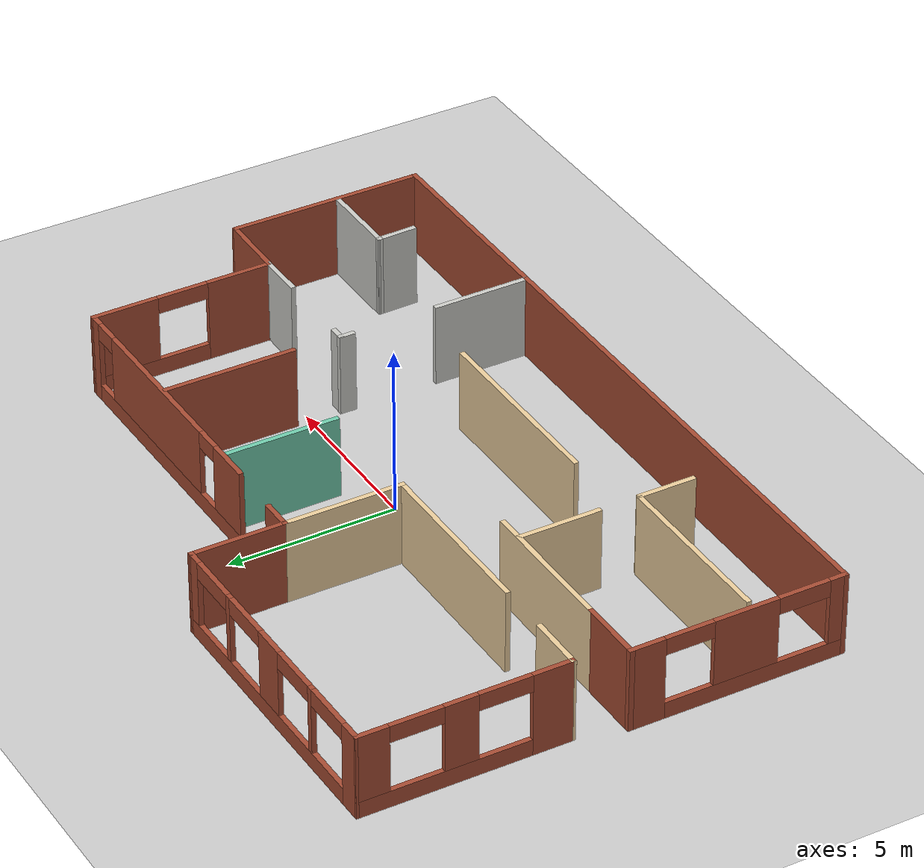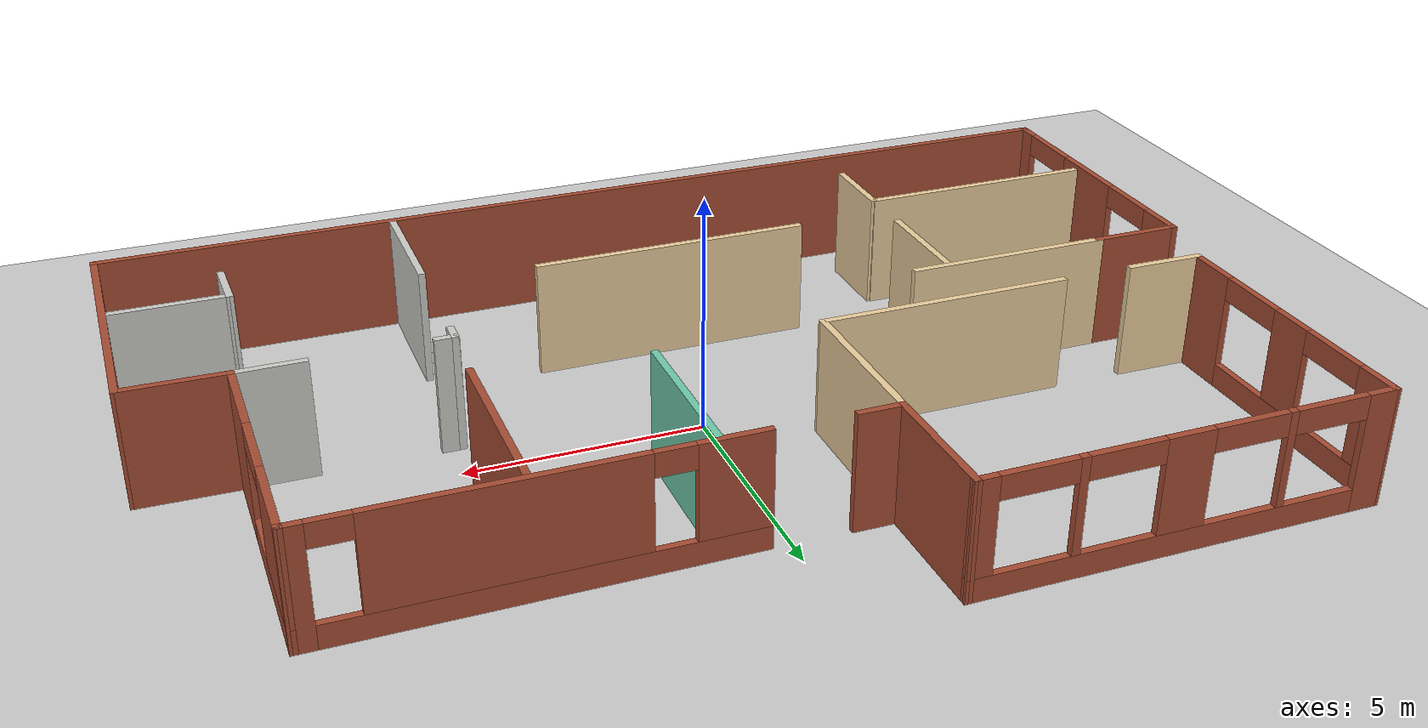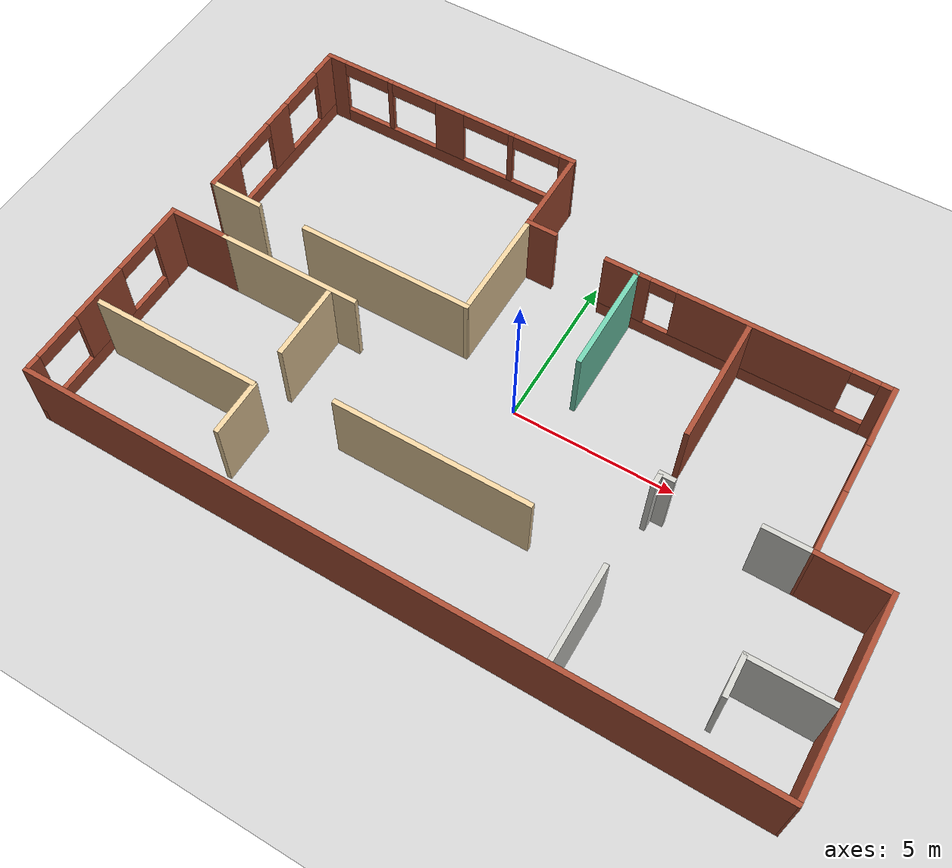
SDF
<sdf version="1.6">
 <world name="default">
  <model name="ground_plane">
   <static>1</static>
   <link name="link">
    <collision name="collision">
     <geometry><plane><normal>0 0 1</normal><size>100 100</size></plane></geometry>
     <surface><friction><ode><mu>100</mu><mu2>50</mu2></ode></friction></surface>
    </collision>
    <visual name="visual">
     <cast_shadows>0</cast_shadows>
     <geometry><plane><normal>0 0 1</normal><size>100 100</size></plane></geometry>
     <material>
      <script><uri>file://media/materials/scripts/gazebo.material</uri><name>Gazebo/Grey</name></script>
     </material>
    </visual>
   </link>
  </model>
  <model name="Building">
   <pose>-0.04157 0.13708 0 0 -0 0</pose>
   <link name="Wall_0">
    <pose>-6.38643 6.94192 0 0 -0 0.004651</pose>
    <visual name="Wall_0_Visual_0">
     <pose>-4.03681 0 1.25 0 -0 0</pose>
     <geometry><box><size>0.676483 0.15 2.5</size></box></geometry>
     <material>
      <script><uri>file://media/materials/scripts/gazebo.material</uri><name>Gazebo/Bricks</name></script>
      <ambient>1 1 1 1</ambient>
     </material>
     <meta><layer>0</layer></meta>
    </visual>
    <collision name="Wall_0_Collision_0">
     <geometry><box><size>0.676483 0.15 2.5</size></box></geometry>
     <pose>-4.03681 0 1.25 0 -0 0</pose>
    </collision>
    <visual name="Wall_0_Visual_1">
     <pose>0.338242 0 0.25 0 -0 0</pose>
     <geometry><box><size>8.07361 0.15 0.5</size></box></geometry>
     <material>
      <script><uri>file://media/materials/scripts/gazebo.material</uri><name>Gazebo/Bricks</name></script>
      <ambient>1 1 1 1</ambient>
     </material>
     <meta><layer>0</layer></meta>
    </visual>
    <collision name="Wall_0_Collision_1">
     <geometry><box><size>8.07361 0.15 0.5</size></box></geometry>
     <pose>0.338242 0 0.25 0 -0 0</pose>
    </collision>
    <visual name="Wall_0_Visual_2">
     <pose>-2.05817 0 1.5 0 -0 0</pose>
     <geometry><box><size>0.164796 0.15 2</size></box></geometry>
     <material>
      <script><uri>file://media/materials/scripts/gazebo.material</uri><name>Gazebo/Bricks</name></script>
      <ambient>1 1 1 1</ambient>
     </material>
     <meta><layer>0</layer></meta>
    </visual>
    <collision name="Wall_0_Collision_2">
     <geometry><box><size>0.164796 0.15 2</size></box></geometry>
     <pose>-2.05817 0 1.5 0 -0 0</pose>
    </collision>
    <visual name="Wall_0_Visual_3">
     <pose>0.078861 0 1.5 0 -0 0</pose>
     <geometry><box><size>0.993258 0.15 2</size></box></geometry>
     <material>
      <script><uri>file://media/materials/scripts/gazebo.material</uri><name>Gazebo/Bricks</name></script>
      <ambient>1 1 1 1</ambient>
     </material>
     <meta><layer>0</layer></meta>
    </visual>
    <collision name="Wall_0_Collision_3">
     <geometry><box><size>0.993258 0.15 2</size></box></geometry>
     <pose>0.078861 0 1.5 0 -0 0</pose>
    </collision>
    <visual name="Wall_0_Visual_4">
     <pose>2.22237 0 1.5 0 -0 0</pose>
     <geometry><box><size>0.177762 0.15 2</size></box></geometry>
     <material>
      <script><uri>file://media/materials/scripts/gazebo.material</uri><name>Gazebo/Bricks</name></script>
      <ambient>1 1 1 1</ambient>
     </material>
     <meta><layer>0</layer></meta>
    </visual>
    <collision name="Wall_0_Collision_4">
     <geometry><box><size>0.177762 0.15 2</size></box></geometry>
     <pose>2.22237 0 1.5 0 -0 0</pose>
    </collision>
    <visual name="Wall_0_Visual_5">
     <pose>4.12215 0 1.5 0 -0 0</pose>
     <geometry><box><size>0.505795 0.15 2</size></box></geometry>
     <material>
      <script><uri>file://media/materials/scripts/gazebo.material</uri><name>Gazebo/Bricks</name></script>
      <ambient>1 1 1 1</ambient>
     </material>
     <meta><layer>0</layer></meta>
    </visual>
    <collision name="Wall_0_Collision_5">
     <geometry><box><size>0.505795 0.15 2</size></box></geometry>
     <pose>4.12215 0 1.5 0 -0 0</pose>
    </collision>
    <visual name="Wall_0_Visual_6">
     <pose>-2.91956 0 2.25 0 -0 0</pose>
     <geometry><box><size>1.558 0.15 0.5</size></box></geometry>
     <material>
      <script><uri>file://media/materials/scripts/gazebo.material</uri><name>Gazebo/Bricks</name></script>
      <ambient>1 1 1 1</ambient>
     </material>
     <meta><layer>0</layer></meta>
    </visual>
    <collision name="Wall_0_Collision_6">
     <geometry><box><size>1.558 0.15 0.5</size></box></geometry>
     <pose>-2.91956 0 2.25 0 -0 0</pose>
    </collision>
    <visual name="Wall_0_Visual_7">
     <pose>-1.19677 0 2.25 0 -0 0</pose>
     <geometry><box><size>1.558 0.15 0.5</size></box></geometry>
     <material>
      <script><uri>file://media/materials/scripts/gazebo.material</uri><name>Gazebo/Bricks</name></script>
      <ambient>1 1 1 1</ambient>
     </material>
     <meta><layer>0</layer></meta>
    </visual>
    <collision name="Wall_0_Collision_7">
     <geometry><box><size>1.558 0.15 0.5</size></box></geometry>
     <pose>-1.19677 0 2.25 0 -0 0</pose>
    </collision>
    <visual name="Wall_0_Visual_8">
     <pose>1.35449 0 2.25 0 -0 0</pose>
     <geometry><box><size>1.558 0.15 0.5</size></box></geometry>
     <material>
      <script><uri>file://media/materials/scripts/gazebo.material</uri><name>Gazebo/Bricks</name></script>
      <ambient>1 1 1 1</ambient>
     </material>
     <meta><layer>0</layer></meta>
    </visual>
    <collision name="Wall_0_Collision_8">
     <geometry><box><size>1.558 0.15 0.5</size></box></geometry>
     <pose>1.35449 0 2.25 0 -0 0</pose>
    </collision>
    <visual name="Wall_0_Visual_9">
     <pose>3.09025 0 2.25 0 -0 0</pose>
     <geometry><box><size>1.558 0.15 0.5</size></box></geometry>
     <material>
      <script><uri>file://media/materials/scripts/gazebo.material</uri><name>Gazebo/Bricks</name></script>
      <ambient>1 1 1 1</ambient>
     </material>
     <meta><layer>0</layer></meta>
    </visual>
    <collision name="Wall_0_Collision_9">
     <geometry><box><size>1.558 0.15 0.5</size></box></geometry>
     <pose>3.09025 0 2.25 0 -0 0</pose>
    </collision>
   </link>
   <link name="Wall_10">
    <pose>-11.0594 -3.78708 0 0 0 -1.5708</pose>
    <visual name="Wall_10_Visual_0">
     <pose>-2.71387 0 1.25 0 -0 0</pose>
     <geometry><box><size>1.07227 0.15 2.5</size></box></geometry>
     <material>
      <script><uri>file://media/materials/scripts/gazebo.material</uri><name>Gazebo/Bricks</name></script>
      <ambient>1 1 1 1</ambient>
     </material>
     <meta><layer>0</layer></meta>
    </visual>
    <collision name="Wall_10_Collision_0">
     <geometry><box><size>1.07227 0.15 2.5</size></box></geometry>
     <pose>-2.71387 0 1.25 0 -0 0</pose>
    </collision>
    <visual name="Wall_10_Visual_1">
     <pose>0.536132 0 0.25 0 -0 0</pose>
     <geometry><box><size>5.42774 0.15 0.5</size></box></geometry>
     <material>
      <script><uri>file://media/materials/scripts/gazebo.material</uri><name>Gazebo/Bricks</name></script>
      <ambient>1 1 1 1</ambient>
     </material>
     <meta><layer>0</layer></meta>
    </visual>
    <collision name="Wall_10_Collision_1">
     <geometry><box><size>5.42774 0.15 0.5</size></box></geometry>
     <pose>0.536132 0 0.25 0 -0 0</pose>
    </collision>
    <visual name="Wall_10_Visual_2">
     <pose>0.214444 0 1.5 0 -0 0</pose>
     <geometry><box><size>1.92236 0.15 2</size></box></geometry>
     <material>
      <script><uri>file://media/materials/scripts/gazebo.material</uri><name>Gazebo/Bricks</name></script>
      <ambient>1 1 1 1</ambient>
     </material>
     <meta><layer>0</layer></meta>
    </visual>
    <collision name="Wall_10_Collision_2">
     <geometry><box><size>1.92236 0.15 2</size></box></geometry>
     <pose>0.214444 0 1.5 0 -0 0</pose>
    </collision>
    <visual name="Wall_10_Visual_3">
     <pose>2.97431 0 1.5 0 -0 0</pose>
     <geometry><box><size>0.551376 0.15 2</size></box></geometry>
     <material>
      <script><uri>file://media/materials/scripts/gazebo.material</uri><name>Gazebo/Bricks</name></script>
      <ambient>1 1 1 1</ambient>
     </material>
     <meta><layer>0</layer></meta>
    </visual>
    <collision name="Wall_10_Collision_3">
     <geometry><box><size>0.551376 0.15 2</size></box></geometry>
     <pose>2.97431 0 1.5 0 -0 0</pose>
    </collision>
    <visual name="Wall_10_Visual_4">
     <pose>-1.46223 0 2.25 0 -0 0</pose>
     <geometry><box><size>1.431 0.15 0.5</size></box></geometry>
     <material>
      <script><uri>file://media/materials/scripts/gazebo.material</uri><name>Gazebo/Bricks</name></script>
      <ambient>1 1 1 1</ambient>
     </material>
     <meta><layer>0</layer></meta>
    </visual>
    <collision name="Wall_10_Collision_4">
     <geometry><box><size>1.431 0.15 0.5</size></box></geometry>
     <pose>-1.46223 0 2.25 0 -0 0</pose>
    </collision>
    <visual name="Wall_10_Visual_5">
     <pose>1.93712 0 2.25 0 -0 0</pose>
     <geometry><box><size>1.523 0.15 0.5</size></box></geometry>
     <material>
      <script><uri>file://media/materials/scripts/gazebo.material</uri><name>Gazebo/Bricks</name></script>
      <ambient>1 1 1 1</ambient>
     </material>
     <meta><layer>0</layer></meta>
    </visual>
    <collision name="Wall_10_Collision_5">
     <geometry><box><size>1.523 0.15 0.5</size></box></geometry>
     <pose>1.93712 0 2.25 0 -0 0</pose>
    </collision>
   </link>
   <link name="Wall_11">
    <collision name="Wall_11_Collision">
     <geometry><box><size>22.25 0.15 2.5</size></box></geometry>
     <pose>0 0 1.25 0 -0 0</pose>
    </collision>
    <visual name="Wall_11_Visual">
     <pose>0 0 1.25 0 -0 0</pose>
     <geometry><box><size>22.25 0.15 2.5</size></box></geometry>
     <material>
      <script><uri>file://media/materials/scripts/gazebo.material</uri><name>Gazebo/Bricks</name></script>
      <ambient>1 1 1 1</ambient>
     </material>
     <meta><layer>0</layer></meta>
    </visual>
    <pose>-0.009426 -6.96208 0 0 -0 0</pose>
   </link>
   <link name="Wall_12">
    <collision name="Wall_12_Collision">
     <geometry><box><size>5.93893 0.15 2.5</size></box></geometry>
     <pose>0 0 1.25 0 -0 0</pose>
    </collision>
    <visual name="Wall_12_Visual">
     <pose>0 0 1.25 0 -0 0</pose>
     <geometry><box><size>5.93893 0.15 2.5</size></box></geometry>
     <material>
      <script><uri>file://media/materials/scripts/gazebo.material</uri><name>Gazebo/Bricks</name></script>
      <ambient>1 1 1 1</ambient>
     </material>
     <meta><layer>0</layer></meta>
    </visual>
    <pose>11.0496 -4.06758 0 0 -0 1.56769</pose>
   </link>
   <link name="Wall_13">
    <collision name="Wall_13_Collision">
     <geometry><box><size>2.21989 0.15 2.5</size></box></geometry>
     <pose>0 0 1.25 0 -0 0</pose>
    </collision>
    <visual name="Wall_13_Visual">
     <pose>0 0 1.25 0 -0 0</pose>
     <geometry><box><size>2.21989 0.15 2.5</size></box></geometry>
     <material>
      <script><uri>file://media/materials/scripts/gazebo.material</uri><name>Gazebo/Bricks</name></script>
      <ambient>1 1 1 1</ambient>
     </material>
     <meta><layer>0</layer></meta>
    </visual>
    <pose>10.0236 -1.15758 0 0 -0 3.12662</pose>
   </link>
   <link name="Wall_14">
    <pose>8.98107 1.57092 0 0 -0 1.57356</pose>
    <visual name="Wall_14_Visual_0">
     <pose>-1.77321 0 1.25 0 -0 0</pose>
     <geometry><box><size>2.02965 0.15 2.5</size></box></geometry>
     <material>
      <script><uri>file://media/materials/scripts/gazebo.material</uri><name>Gazebo/Bricks</name></script>
      <ambient>1 1 1 1</ambient>
     </material>
     <meta><layer>0</layer></meta>
    </visual>
    <collision name="Wall_14_Collision_0">
     <geometry><box><size>2.02965 0.15 2.5</size></box></geometry>
     <pose>-1.77321 0 1.25 0 -0 0</pose>
    </collision>
    <visual name="Wall_14_Visual_1">
     <pose>1.01483 0 0.25 0 -0 0</pose>
     <geometry><box><size>3.54641 0.15 0.5</size></box></geometry>
     <material>
      <script><uri>file://media/materials/scripts/gazebo.material</uri><name>Gazebo/Bricks</name></script>
      <ambient>1 1 1 1</ambient>
     </material>
     <meta><layer>0</layer></meta>
    </visual>
    <collision name="Wall_14_Collision_1">
     <geometry><box><size>3.54641 0.15 0.5</size></box></geometry>
     <pose>1.01483 0 0.25 0 -0 0</pose>
    </collision>
    <visual name="Wall_14_Visual_2">
     <pose>1.78283 0 1.5 0 -0 0</pose>
     <geometry><box><size>2.01041 0.15 2</size></box></geometry>
     <material>
      <script><uri>file://media/materials/scripts/gazebo.material</uri><name>Gazebo/Bricks</name></script>
      <ambient>1 1 1 1</ambient>
     </material>
     <meta><layer>0</layer></meta>
    </visual>
    <collision name="Wall_14_Collision_2">
     <geometry><box><size>2.01041 0.15 2</size></box></geometry>
     <pose>1.78283 0 1.5 0 -0 0</pose>
    </collision>
    <visual name="Wall_14_Visual_3">
     <pose>0.009621 0 2.25 0 -0 0</pose>
     <geometry><box><size>1.536 0.15 0.5</size></box></geometry>
     <material>
      <script><uri>file://media/materials/scripts/gazebo.material</uri><name>Gazebo/Bricks</name></script>
      <ambient>1 1 1 1</ambient>
     </material>
     <meta><layer>0</layer></meta>
    </visual>
    <collision name="Wall_14_Collision_3">
     <geometry><box><size>1.536 0.15 0.5</size></box></geometry>
     <pose>0.009621 0 2.25 0 -0 0</pose>
    </collision>
   </link>
   <link name="Wall_15">
    <pose>4.71957 4.26092 0 0 0 -3.13619</pose>
    <visual name="Wall_15_Visual_0">
     <pose>-4.09017 0 1.25 0 -0 0</pose>
     <geometry><box><size>0.478412 0.15 2.5</size></box></geometry>
     <material>
      <script><uri>file://media/materials/scripts/gazebo.material</uri><name>Gazebo/Bricks</name></script>
      <ambient>1 1 1 1</ambient>
     </material>
     <meta><layer>0</layer></meta>
    </visual>
    <collision name="Wall_15_Collision_0">
     <geometry><box><size>0.478412 0.15 2.5</size></box></geometry>
     <pose>-4.09017 0 1.25 0 -0 0</pose>
    </collision>
    <visual name="Wall_15_Visual_1">
     <pose>0.239206 0 0.25 0 -0 0</pose>
     <geometry><box><size>8.18035 0.15 0.5</size></box></geometry>
     <material>
      <script><uri>file://media/materials/scripts/gazebo.material</uri><name>Gazebo/Bricks</name></script>
      <ambient>1 1 1 1</ambient>
     </material>
     <meta><layer>0</layer></meta>
    </visual>
    <collision name="Wall_15_Collision_1">
     <geometry><box><size>8.18035 0.15 0.5</size></box></geometry>
     <pose>0.239206 0 0.25 0 -0 0</pose>
    </collision>
    <visual name="Wall_15_Visual_2">
     <pose>-0.485949 0 1.5 0 -0 0</pose>
     <geometry><box><size>5.13004 0.15 2</size></box></geometry>
     <material>
      <script><uri>file://media/materials/scripts/gazebo.material</uri><name>Gazebo/Bricks</name></script>
      <ambient>1 1 1 1</ambient>
     </material>
     <meta><layer>0</layer></meta>
    </visual>
    <collision name="Wall_15_Collision_2">
     <geometry><box><size>5.13004 0.15 2</size></box></geometry>
     <pose>-0.485949 0 1.5 0 -0 0</pose>
    </collision>
    <visual name="Wall_15_Visual_3">
     <pose>3.60423 0 1.5 0 -0 0</pose>
     <geometry><box><size>1.45031 0.15 2</size></box></geometry>
     <material>
      <script><uri>file://media/materials/scripts/gazebo.material</uri><name>Gazebo/Bricks</name></script>
      <ambient>1 1 1 1</ambient>
     </material>
     <meta><layer>0</layer></meta>
    </visual>
    <collision name="Wall_15_Collision_3">
     <geometry><box><size>1.45031 0.15 2</size></box></geometry>
     <pose>3.60423 0 1.5 0 -0 0</pose>
    </collision>
    <visual name="Wall_15_Visual_4">
     <pose>-3.45097 0 2.25 0 -0 0</pose>
     <geometry><box><size>0.8 0.15 0.5</size></box></geometry>
     <material>
      <script><uri>file://media/materials/scripts/gazebo.material</uri><name>Gazebo/Bricks</name></script>
      <ambient>1 1 1 1</ambient>
     </material>
     <meta><layer>0</layer></meta>
    </visual>
    <collision name="Wall_15_Collision_4">
     <geometry><box><size>0.8 0.15 0.5</size></box></geometry>
     <pose>-3.45097 0 2.25 0 -0 0</pose>
    </collision>
    <visual name="Wall_15_Visual_5">
     <pose>2.47907 0 2.25 0 -0 0</pose>
     <geometry><box><size>0.8 0.15 0.5</size></box></geometry>
     <material>
      <script><uri>file://media/materials/scripts/gazebo.material</uri><name>Gazebo/Bricks</name></script>
      <ambient>1 1 1 1</ambient>
     </material>
     <meta><layer>0</layer></meta>
    </visual>
    <collision name="Wall_15_Collision_5">
     <geometry><box><size>0.8 0.15 0.5</size></box></geometry>
     <pose>2.47907 0 2.25 0 -0 0</pose>
    </collision>
   </link>
   <link name="Wall_17">
    <collision name="Wall_17_Collision">
     <geometry><box><size>1 0.15 2.5</size></box></geometry>
     <pose>0 0 1.25 0 -0 0</pose>
    </collision>
    <visual name="Wall_17_Visual">
     <pose>0 0 1.25 0 -0 0</pose>
     <geometry><box><size>1 0.15 2.5</size></box></geometry>
     <material>
      <script><uri>file://media/materials/scripts/gazebo.material</uri><name>Gazebo/Bricks</name></script>
      <ambient>1 1 1 1</ambient>
     </material>
     <meta><layer>0</layer></meta>
    </visual>
    <pose>-1.65643 4.28292 0 0 -0 0</pose>
   </link>
   <link name="Wall_19">
    <collision name="Wall_19_Collision">
     <geometry><box><size>2.5 0.15 2.5</size></box></geometry>
     <pose>0 0 1.25 0 -0 0</pose>
    </collision>
    <visual name="Wall_19_Visual">
     <pose>0 0 1.25 0 -0 0</pose>
     <geometry><box><size>2.5 0.15 2.5</size></box></geometry>
     <material>
      <script><uri>file://media/materials/scripts/gazebo.material</uri><name>Gazebo/Grey</name></script>
      <ambient>0.921569 0.807843 0.615686 1</ambient>
     </material>
     <meta><layer>0</layer></meta>
    </visual>
    <pose>-5.59943 -1.81708 0 0 0 -1.5708</pose>
   </link>
   <link name="Wall_2">
    <collision name="Wall_2_Collision">
     <geometry><box><size>5.5 0.15 2.5</size></box></geometry>
     <pose>0 0 1.25 0 -0 0</pose>
    </collision>
    <visual name="Wall_2_Visual">
     <pose>0 0 1.25 0 -0 0</pose>
     <geometry><box><size>5.5 0.15 2.5</size></box></geometry>
     <material>
      <script><uri>file://media/materials/scripts/gazebo.material</uri><name>Gazebo/Grey</name></script>
      <ambient>0.921569 0.807843 0.615686 1</ambient>
     </material>
     <meta><layer>0</layer></meta>
    </visual>
    <pose>-4.76143 0.821919 0 0 -0 3.14159</pose>
   </link>
   <link name="Wall_21">
    <collision name="Wall_21_Collision">
     <geometry><box><size>1.75 0.15 2.5</size></box></geometry>
     <pose>0 0 1.25 0 -0 0</pose>
    </collision>
    <visual name="Wall_21_Visual">
     <pose>0 0 1.25 0 -0 0</pose>
     <geometry><box><size>1.75 0.15 2.5</size></box></geometry>
     <material>
      <script><uri>file://media/materials/scripts/gazebo.material</uri><name>Gazebo/Grey</name></script>
      <ambient>0.921569 0.807843 0.615686 1</ambient>
     </material>
     <meta><layer>0</layer></meta>
    </visual>
    <pose>-5.59943 -5.05208 0 0 0 -1.5708</pose>
   </link>
   <link name="Wall_23">
    <collision name="Wall_23_Collision">
     <geometry><box><size>5.25 0.15 2.5</size></box></geometry>
     <pose>0 0 1.25 0 -0 0</pose>
    </collision>
    <visual name="Wall_23_Visual">
     <pose>0 0 1.25 0 -0 0</pose>
     <geometry><box><size>5.25 0.15 2.5</size></box></geometry>
     <material>
      <script><uri>file://media/materials/scripts/gazebo.material</uri><name>Gazebo/Grey</name></script>
      <ambient>0.921569 0.807843 0.615686 1</ambient>
     </material>
     <meta><layer>0</layer></meta>
    </visual>
    <pose>-8.21943 -4.22108 0 0 -0 0</pose>
   </link>
   <link name="Wall_26">
    <collision name="Wall_26_Collision">
     <geometry><box><size>6 0.15 2.5</size></box></geometry>
     <pose>0 0 1.25 0 -0 0</pose>
    </collision>
    <visual name="Wall_26_Visual">
     <pose>0 0 1.25 0 -0 0</pose>
     <geometry><box><size>6 0.15 2.5</size></box></geometry>
     <material>
      <script><uri>file://media/materials/scripts/gazebo.material</uri><name>Gazebo/Grey</name></script>
      <ambient>0.921569 0.807843 0.615686 1</ambient>
     </material>
     <meta><layer>0</layer></meta>
    </visual>
    <pose>-0.533426 -3.57908 0 0 -0 0</pose>
   </link>
   <link name="Wall_30">
    <collision name="Wall_30_Collision">
     <geometry><box><size>3.5 0.15 2.5</size></box></geometry>
     <pose>0 0 1.25 0 -0 0</pose>
    </collision>
    <visual name="Wall_30_Visual">
     <pose>0 0 1.25 0 -0 0</pose>
     <geometry><box><size>3.5 0.15 2.5</size></box></geometry>
     <material>
      <script><uri>file://media/materials/scripts/gazebo.material</uri><name>Gazebo/Grey</name></script>
      <ambient>0.435294 0.796078 0.67451 1</ambient>
     </material>
     <meta><layer>0</layer></meta>
    </visual>
    <pose>1.40557 2.54692 0 0 0 -1.5708</pose>
   </link>
   <link name="Wall_32">
    <collision name="Wall_32_Collision">
     <geometry><box><size>0.5 0.15 2.5</size></box></geometry>
     <pose>0 0 1.25 0 -0 0</pose>
    </collision>
    <visual name="Wall_32_Visual">
     <pose>0 0 1.25 0 -0 0</pose>
     <geometry><box><size>0.5 0.15 2.5</size></box></geometry>
     <material>
      <script><uri>file://media/materials/scripts/gazebo.material</uri><name>Gazebo/CeilingTiled</name></script>
      <ambient>1 1 1 1</ambient>
     </material>
     <meta><layer>0</layer></meta>
    </visual>
    <pose>4.77857 -1.28608 0 0 -0 1.5708</pose>
   </link>
   <link name="Wall_33">
    <collision name="Wall_33_Collision">
     <geometry><box><size>0.5 0.15 2.5</size></box></geometry>
     <pose>0 0 1.25 0 -0 0</pose>
    </collision>
    <visual name="Wall_33_Visual">
     <pose>0 0 1.25 0 -0 0</pose>
     <geometry><box><size>0.5 0.15 2.5</size></box></geometry>
     <material>
      <script><uri>file://media/materials/scripts/gazebo.material</uri><name>Gazebo/CeilingTiled</name></script>
      <ambient>1 1 1 1</ambient>
     </material>
     <meta><layer>0</layer></meta>
    </visual>
    <pose>4.95357 -1.11108 0 0 -0 0</pose>
   </link>
   <link name="Wall_35">
    <collision name="Wall_35_Collision">
     <geometry><box><size>1.5 0.15 2.5</size></box></geometry>
     <pose>0 0 1.25 0 -0 0</pose>
    </collision>
    <visual name="Wall_35_Visual">
     <pose>0 0 1.25 0 -0 0</pose>
     <geometry><box><size>1.5 0.15 2.5</size></box></geometry>
     <material>
      <script><uri>file://media/materials/scripts/gazebo.material</uri><name>Gazebo/CeilingTiled</name></script>
      <ambient>1 1 1 1</ambient>
     </material>
     <meta><layer>0</layer></meta>
    </visual>
    <pose>8.31357 -1.14208 0 0 -0 0</pose>
   </link>
   <link name="Wall_37">
    <collision name="Wall_37_Collision">
     <geometry><box><size>2.46292 0.15 2.5</size></box></geometry>
     <pose>0 0 1.25 0 -0 0</pose>
    </collision>
    <visual name="Wall_37_Visual">
     <pose>0 0 1.25 0 -0 0</pose>
     <geometry><box><size>2.46292 0.15 2.5</size></box></geometry>
     <material>
      <script><uri>file://media/materials/scripts/gazebo.material</uri><name>Gazebo/CeilingTiled</name></script>
      <ambient>1 1 1 1</ambient>
     </material>
     <meta><layer>0</layer></meta>
    </visual>
    <pose>9.74857 -4.43108 0 0 -0 3.14159</pose>
   </link>
   <link name="Wall_38">
    <collision name="Wall_38_Collision">
     <geometry><box><size>1.25 0.15 2.5</size></box></geometry>
     <pose>0 0 1.25 0 -0 0</pose>
    </collision>
    <visual name="Wall_38_Visual">
     <pose>0 0 1.25 0 -0 0</pose>
     <geometry><box><size>1.25 0.15 2.5</size></box></geometry>
     <material>
      <script><uri>file://media/materials/scripts/gazebo.material</uri><name>Gazebo/CeilingTiled</name></script>
      <ambient>1 1 1 1</ambient>
     </material>
     <meta><layer>0</layer></meta>
    </visual>
    <pose>8.60757 -4.98108 0 0 0 -1.54353</pose>
   </link>
   <link name="Wall_4">
    <collision name="Wall_4_Collision">
     <geometry><box><size>1.75 0.15 2.5</size></box></geometry>
     <pose>0 0 1.25 0 -0 0</pose>
    </collision>
    <visual name="Wall_4_Visual">
     <pose>0 0 1.25 0 -0 0</pose>
     <geometry><box><size>1.75 0.15 2.5</size></box></geometry>
     <material>
      <script><uri>file://media/materials/scripts/gazebo.material</uri><name>Gazebo/Grey</name></script>
      <ambient>0.921569 0.807843 0.615686 1</ambient>
     </material>
     <meta><layer>0</layer></meta>
    </visual>
    <pose>-9.88643 0.831919 0 0 -0 3.12909</pose>
   </link>
   <link name="Wall_40">
    <collision name="Wall_40_Collision">
     <geometry><box><size>3 0.15 2.5</size></box></geometry>
     <pose>0 0 1.25 0 -0 0</pose>
    </collision>
    <visual name="Wall_40_Visual">
     <pose>0 0 1.25 0 -0 0</pose>
     <geometry><box><size>3 0.15 2.5</size></box></geometry>
     <material>
      <script><uri>file://media/materials/scripts/gazebo.material</uri><name>Gazebo/CeilingTiled</name></script>
      <ambient>1 1 1 1</ambient>
     </material>
     <meta><layer>0</layer></meta>
    </visual>
    <pose>4.76557 -5.52308 0 0 -0 1.5708</pose>
   </link>
   <link name="Wall_42">
    <collision name="Wall_42_Collision">
     <geometry><box><size>4 0.15 2.5</size></box></geometry>
     <pose>0 0 1.25 0 -0 0</pose>
    </collision>
    <visual name="Wall_42_Visual">
     <pose>0 0 1.25 0 -0 0</pose>
     <geometry><box><size>4 0.15 2.5</size></box></geometry>
     <material>
      <script><uri>file://media/materials/scripts/gazebo.material</uri><name>Gazebo/Bricks</name></script>
      <ambient>1 1 1 1</ambient>
     </material>
     <meta><layer>0</layer></meta>
    </visual>
    <pose>4.84357 2.25192 0 0 0 -1.5708</pose>
   </link>
   <link name="Wall_5">
    <pose>-10.6864 3.88192 0 0 -0 1.5708</pose>
    <visual name="Wall_5_Visual_0">
     <pose>-2.49798 0 1.25 0 -0 0</pose>
     <geometry><box><size>1.23397 0.15 2.5</size></box></geometry>
     <material>
      <script><uri>file://media/materials/scripts/gazebo.material</uri><name>Gazebo/Bricks</name></script>
      <ambient>1 1 1 1</ambient>
     </material>
     <meta><layer>0</layer></meta>
    </visual>
    <collision name="Wall_5_Collision_0">
     <geometry><box><size>1.23397 0.15 2.5</size></box></geometry>
     <pose>-2.49798 0 1.25 0 -0 0</pose>
    </collision>
    <visual name="Wall_5_Visual_1">
     <pose>0.616984 0 0.25 0 -0 0</pose>
     <geometry><box><size>4.99595 0.15 0.5</size></box></geometry>
     <material>
      <script><uri>file://media/materials/scripts/gazebo.material</uri><name>Gazebo/Bricks</name></script>
      <ambient>1 1 1 1</ambient>
     </material>
     <meta><layer>0</layer></meta>
    </visual>
    <collision name="Wall_5_Collision_1">
     <geometry><box><size>4.99595 0.15 0.5</size></box></geometry>
     <pose>0.616984 0 0.25 0 -0 0</pose>
    </collision>
    <visual name="Wall_5_Visual_2">
     <pose>0.133921 0 1.5 0 -0 0</pose>
     <geometry><box><size>0.969686 0.15 2</size></box></geometry>
     <material>
      <script><uri>file://media/materials/scripts/gazebo.material</uri><name>Gazebo/Bricks</name></script>
      <ambient>1 1 1 1</ambient>
     </material>
     <meta><layer>0</layer></meta>
    </visual>
    <collision name="Wall_5_Collision_2">
     <geometry><box><size>0.969686 0.15 2</size></box></geometry>
     <pose>0.133921 0 1.5 0 -0 0</pose>
    </collision>
    <visual name="Wall_5_Visual_3">
     <pose>2.63186 0 1.5 0 -0 0</pose>
     <geometry><box><size>0.966196 0.15 2</size></box></geometry>
     <material>
      <script><uri>file://media/materials/scripts/gazebo.material</uri><name>Gazebo/Bricks</name></script>
      <ambient>1 1 1 1</ambient>
     </material>
     <meta><layer>0</layer></meta>
    </visual>
    <collision name="Wall_5_Collision_3">
     <geometry><box><size>0.966196 0.15 2</size></box></geometry>
     <pose>2.63186 0 1.5 0 -0 0</pose>
    </collision>
    <visual name="Wall_5_Visual_4">
     <pose>-1.11596 0 2.25 0 -0 0</pose>
     <geometry><box><size>1.53007 0.15 0.5</size></box></geometry>
     <material>
      <script><uri>file://media/materials/scripts/gazebo.material</uri><name>Gazebo/Bricks</name></script>
      <ambient>1 1 1 1</ambient>
     </material>
     <meta><layer>0</layer></meta>
    </visual>
    <collision name="Wall_5_Collision_4">
     <geometry><box><size>1.53007 0.15 0.5</size></box></geometry>
     <pose>-1.11596 0 2.25 0 -0 0</pose>
    </collision>
    <visual name="Wall_5_Visual_5">
     <pose>1.38376 0 2.25 0 -0 0</pose>
     <geometry><box><size>1.53 0.15 0.5</size></box></geometry>
     <material>
      <script><uri>file://media/materials/scripts/gazebo.material</uri><name>Gazebo/Bricks</name></script>
      <ambient>1 1 1 1</ambient>
     </material>
     <meta><layer>0</layer></meta>
    </visual>
    <collision name="Wall_5_Collision_5">
     <geometry><box><size>1.53 0.15 0.5</size></box></geometry>
     <pose>1.38376 0 2.25 0 -0 0</pose>
    </collision>
   </link>
   <link name="Wall_71">
    <collision name="Wall_71_Collision">
     <geometry><box><size>2.82905 0.15 2.5</size></box></geometry>
     <pose>0 0 1.25 0 -0 0</pose>
    </collision>
    <visual name="Wall_71_Visual">
     <pose>0 0 1.25 0 -0 0</pose>
     <geometry><box><size>2.82905 0.15 2.5</size></box></geometry>
     <material>
      <script><uri>file://media/materials/scripts/gazebo.material</uri><name>Gazebo/Bricks</name></script>
      <ambient>1 1 1 1</ambient>
     </material>
     <meta><layer>0</layer></meta>
    </visual>
    <pose>-2.08393 5.62242 0 0 0 -1.56893</pose>
   </link>
   <link name="Wall_73">
    <collision name="Wall_73_Collision">
     <geometry><box><size>3.61119 0.15 2.5</size></box></geometry>
     <pose>0 0 1.25 0 -0 0</pose>
    </collision>
    <visual name="Wall_73_Visual">
     <pose>0 0 1.25 0 -0 0</pose>
     <geometry><box><size>3.61119 0.15 2.5</size></box></geometry>
     <material>
      <script><uri>file://media/materials/scripts/gazebo.material</uri><name>Gazebo/Grey</name></script>
      <ambient>0.921569 0.807843 0.615686 1</ambient>
     </material>
     <meta><layer>0</layer></meta>
    </visual>
    <pose>-2.08393 2.55242 0 0 0 -1.57224</pose>
   </link>
   <link name="Wall_75">
    <collision name="Wall_75_Collision">
     <geometry><box><size>4.5 0.15 2.5</size></box></geometry>
     <pose>0 0 1.25 0 -0 0</pose>
    </collision>
    <visual name="Wall_75_Visual">
     <pose>0 0 1.25 0 -0 0</pose>
     <geometry><box><size>4.5 0.15 2.5</size></box></geometry>
     <material>
      <script><uri>file://media/materials/scripts/gazebo.material</uri><name>Gazebo/Grey</name></script>
      <ambient>0.921569 0.807843 0.615686 1</ambient>
     </material>
     <meta><layer>0</layer></meta>
    </visual>
    <pose>-7.01943 -0.612081 0 0 -0 0</pose>
   </link>
   <link name="Wall_9">
    <collision name="Wall_9_Collision">
     <geometry><box><size>2.01518 0.15 2.5</size></box></geometry>
     <pose>0 0 1.25 0 -0 0</pose>
    </collision>
    <visual name="Wall_9_Visual">
     <pose>0 0 1.25 0 -0 0</pose>
     <geometry><box><size>2.01518 0.15 2.5</size></box></geometry>
     <material>
      <script><uri>file://media/materials/scripts/gazebo.material</uri><name>Gazebo/Bricks</name></script>
      <ambient>1 1 1 1</ambient>
     </material>
     <meta><layer>0</layer></meta>
    </visual>
    <pose>-10.1269 -0.612081 0 0 -0 3.14159</pose>
   </link>
   <static>1</static>
  </model>
 </world>
</sdf>
